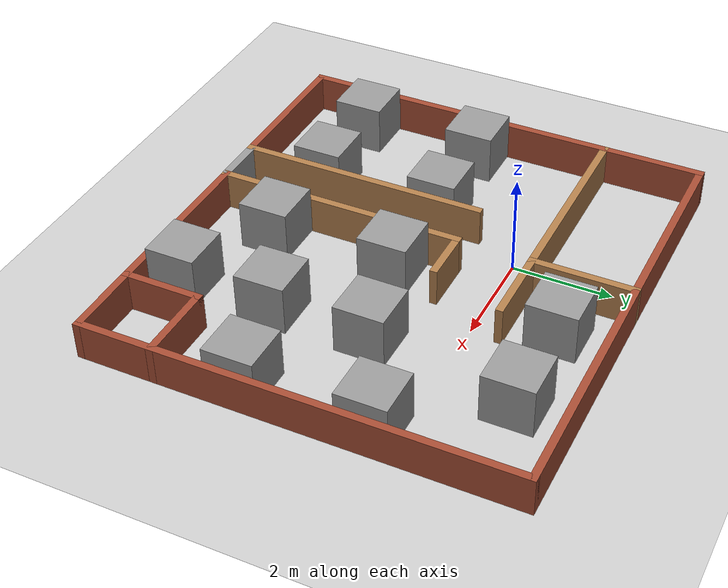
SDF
<sdf version="1.7">
 <world name="default">
  <model name="ground_plane">
   <static>1</static>
   <link name="link">
    <collision name="collision">
     <geometry><plane><normal>0 0 1</normal><size>100 100</size></plane></geometry>
     <surface><friction><ode><mu>100</mu><mu2>50</mu2></ode></friction></surface>
    </collision>
    <visual name="visual">
     <cast_shadows>0</cast_shadows>
     <geometry><plane><normal>0 0 1</normal><size>100 100</size></plane></geometry>
     <material>
      <script><uri>file://media/materials/scripts/gazebo.material</uri><name>Gazebo/Grey</name></script>
     </material>
    </visual>
   </link>
  </model>
  <light name="sun" type="directional">
   <pose>0 0 10 0 -0 0</pose>
   <diffuse>0.8 0.8 0.8 1</diffuse>
   <specular>0.2 0.2 0.2 1</specular>
   <attenuation>
    <range>1000</range>
    <constant>0.9</constant>
    <linear>0.01</linear>
    <quadratic>0.001</quadratic>
   </attenuation>
   <direction>-0.5 0.1 -0.9</direction>
   <spot><inner_angle>0</inner_angle><outer_angle>0</outer_angle><falloff>0</falloff></spot>
  </light>
  <scene><shadows>0</shadows><ambient>0.4 0.4 0.4 1</ambient><background>0.7 0.7 0.7 1</background></scene>
  <physics type="ode">
   <real_time_update_rate>1000</real_time_update_rate>
   <max_step_size>0.001</max_step_size>
   <real_time_factor>1</real_time_factor>
   <ode>
    <solver>
     <type>quick</type>
     <iters>150</iters>
     <precon_iters>0</precon_iters>
     <sor>1.4</sor>
     <use_dynamic_moi_rescaling>1</use_dynamic_moi_rescaling>
    </solver>
    <constraints>
     <cfm>1e-05</cfm>
     <erp>0.2</erp>
     <contact_max_correcting_vel>2000</contact_max_correcting_vel>
     <contact_surface_layer>0.01</contact_surface_layer>
    </constraints>
   </ode>
  </physics>
  <gravity>0 0 -9.8</gravity>
  <magnetic_field>6e-06 2.3e-05 -4.2e-05</magnetic_field>
  <atmosphere type="adiabatic"/>
  <spherical_coordinates>
   <surface_model>EARTH_WGS84</surface_model>
   <latitude_deg>0</latitude_deg>
   <longitude_deg>0</longitude_deg>
   <elevation>0</elevation>
   <heading_deg>0</heading_deg>
  </spherical_coordinates>
  <model name="unit_box">
   <pose>1.07501 -2 0.5 0 0 -9e-06</pose>
   <link name="link">
    <inertial>
     <mass>1</mass>
     <inertia>
      <ixx>0.166667</ixx>
      <ixy>0</ixy>
      <ixz>0</ixz>
      <iyy>0.166667</iyy>
      <iyz>0</iyz>
      <izz>0.166667</izz>
     </inertia>
    </inertial>
    <collision name="collision"><geometry><box><size>1 1 1</size></box></geometry></collision>
    <visual name="visual">
     <geometry><box><size>1 1 1</size></box></geometry>
     <material>
      <script><name>Gazebo/Grey</name><uri>file://media/materials/scripts/gazebo.material</uri></script>
     </material>
    </visual>
   </link>
  </model>
  <model name="unit_box_0">
   <pose>1.075 -4.5 0.5 0 0 -9e-06</pose>
   <link name="link">
    <inertial>
     <mass>1</mass>
     <inertia>
      <ixx>0.166667</ixx>
      <ixy>0</ixy>
      <ixz>0</ixz>
      <iyy>0.166667</iyy>
      <iyz>0</iyz>
      <izz>0.166667</izz>
     </inertia>
    </inertial>
    <collision name="collision"><geometry><box><size>1 1 1</size></box></geometry></collision>
    <visual name="visual">
     <geometry><box><size>1 1 1</size></box></geometry>
     <material>
      <script><name>Gazebo/Grey</name><uri>file://media/materials/scripts/gazebo.material</uri></script>
     </material>
    </visual>
   </link>
  </model>
  <model name="unit_box_1">
   <pose>1.5 1.5 0.5 0 -0 0</pose>
   <link name="link">
    <inertial>
     <mass>1</mass>
     <inertia>
      <ixx>0.166667</ixx>
      <ixy>0</ixy>
      <ixz>0</ixz>
      <iyy>0.166667</iyy>
      <iyz>0</iyz>
      <izz>0.166667</izz>
     </inertia>
    </inertial>
    <collision name="collision"><geometry><box><size>1 1 1</size></box></geometry></collision>
    <visual name="visual">
     <geometry><box><size>1 1 1</size></box></geometry>
     <material>
      <script><name>Gazebo/Grey</name><uri>file://media/materials/scripts/gazebo.material</uri></script>
     </material>
    </visual>
   </link>
  </model>
  <model name="unit_box_2">
   <pose>3.5 1.5 0.5 0 -0 0</pose>
   <link name="link">
    <inertial>
     <mass>1</mass>
     <inertia>
      <ixx>0.166667</ixx>
      <ixy>0</ixy>
      <ixz>0</ixz>
      <iyy>0.166667</iyy>
      <iyz>0</iyz>
      <izz>0.166667</izz>
     </inertia>
    </inertial>
    <collision name="collision"><geometry><box><size>1 1 1</size></box></geometry></collision>
    <visual name="visual">
     <geometry><box><size>1 1 1</size></box></geometry>
     <material>
      <script><name>Gazebo/Grey</name><uri>file://media/materials/scripts/gazebo.material</uri></script>
     </material>
    </visual>
   </link>
  </model>
  <model name="unit_box_3">
   <pose>2.99974 -1.49975 0.5 0 0 -0.005893</pose>
   <link name="link">
    <inertial>
     <mass>1</mass>
     <inertia>
      <ixx>0.166667</ixx>
      <ixy>0</ixy>
      <ixz>0</ixz>
      <iyy>0.166667</iyy>
      <iyz>0</iyz>
      <izz>0.166667</izz>
     </inertia>
    </inertial>
    <collision name="collision"><geometry><box><size>1 1 1</size></box></geometry></collision>
    <visual name="visual">
     <geometry><box><size>1 1 1</size></box></geometry>
     <material>
      <script><name>Gazebo/Grey</name><uri>file://media/materials/scripts/gazebo.material</uri></script>
     </material>
    </visual>
   </link>
  </model>
  <model name="unit_box_4">
   <pose>2.99225 -3.49587 0.5 0 -0 0.010614</pose>
   <link name="link">
    <inertial>
     <mass>1</mass>
     <inertia>
      <ixx>0.166667</ixx>
      <ixy>0</ixy>
      <ixz>0</ixz>
      <iyy>0.166667</iyy>
      <iyz>0</iyz>
      <izz>0.166667</izz>
     </inertia>
    </inertial>
    <collision name="collision"><geometry><box><size>1 1 1</size></box></geometry></collision>
    <visual name="visual">
     <geometry><box><size>1 1 1</size></box></geometry>
     <material>
      <script><name>Gazebo/Grey</name><uri>file://media/materials/scripts/gazebo.material</uri></script>
     </material>
    </visual>
   </link>
  </model>
  <model name="unit_box_5">
   <pose>2.99984 -5.34682 0.5 0 -0 1.2e-05</pose>
   <link name="link">
    <inertial>
     <mass>1</mass>
     <inertia>
      <ixx>0.166667</ixx>
      <ixy>0</ixy>
      <ixz>0</ixz>
      <iyy>0.166667</iyy>
      <iyz>0</iyz>
      <izz>0.166667</izz>
     </inertia>
    </inertial>
    <collision name="collision"><geometry><box><size>1 1 1</size></box></geometry></collision>
    <visual name="visual">
     <geometry><box><size>1 1 1</size></box></geometry>
     <material>
      <script><name>Gazebo/Grey</name><uri>file://media/materials/scripts/gazebo.material</uri></script>
     </material>
    </visual>
   </link>
  </model>
  <model name="unit_box_6">
   <pose>4.90508 -3 0.5 0 0 -9e-06</pose>
   <link name="link">
    <inertial>
     <mass>1</mass>
     <inertia>
      <ixx>0.166667</ixx>
      <ixy>0</ixy>
      <ixz>0</ixz>
      <iyy>0.166667</iyy>
      <iyz>0</iyz>
      <izz>0.166667</izz>
     </inertia>
    </inertial>
    <collision name="collision"><geometry><box><size>1 1 1</size></box></geometry></collision>
    <visual name="visual">
     <geometry><box><size>1 1 1</size></box></geometry>
     <material>
      <script><name>Gazebo/Grey</name><uri>file://media/materials/scripts/gazebo.material</uri></script>
     </material>
    </visual>
   </link>
  </model>
  <model name="unit_box_7">
   <pose>4.90509 -0.499996 0.5 0 0 -9e-06</pose>
   <link name="link">
    <inertial>
     <mass>1</mass>
     <inertia>
      <ixx>0.166667</ixx>
      <ixy>0</ixy>
      <ixz>0</ixz>
      <iyy>0.166667</iyy>
      <iyz>0</iyz>
      <izz>0.166667</izz>
     </inertia>
    </inertial>
    <collision name="collision"><geometry><box><size>1 1 1</size></box></geometry></collision>
    <visual name="visual">
     <geometry><box><size>1 1 1</size></box></geometry>
     <material>
      <script><name>Gazebo/Grey</name><uri>file://media/materials/scripts/gazebo.material</uri></script>
     </material>
    </visual>
   </link>
  </model>
  <model name="unit_box_8">
   <pose>-1.09492 -2 0.5 0 -0 9e-06</pose>
   <link name="link">
    <inertial>
     <mass>1</mass>
     <inertia>
      <ixx>0.166667</ixx>
      <ixy>0</ixy>
      <ixz>0</ixz>
      <iyy>0.166667</iyy>
      <iyz>0</iyz>
      <izz>0.166667</izz>
     </inertia>
    </inertial>
    <collision name="collision"><geometry><box><size>1 1 1</size></box></geometry></collision>
    <visual name="visual">
     <geometry><box><size>1 1 1</size></box></geometry>
     <material>
      <script><name>Gazebo/Grey</name><uri>file://media/materials/scripts/gazebo.material</uri></script>
     </material>
    </visual>
   </link>
  </model>
  <model name="unit_box_9">
   <pose>-2.925 -2 0.5 0 0 -9e-06</pose>
   <link name="link">
    <inertial>
     <mass>1</mass>
     <inertia>
      <ixx>0.166667</ixx>
      <ixy>0</ixy>
      <ixz>0</ixz>
      <iyy>0.166667</iyy>
      <iyz>0</iyz>
      <izz>0.166667</izz>
     </inertia>
    </inertial>
    <collision name="collision"><geometry><box><size>1 1 1</size></box></geometry></collision>
    <visual name="visual">
     <geometry><box><size>1 1 1</size></box></geometry>
     <material>
      <script><name>Gazebo/Grey</name><uri>file://media/materials/scripts/gazebo.material</uri></script>
     </material>
    </visual>
   </link>
  </model>
  <model name="unit_box_10">
   <pose>-1.09491 -4.5 0.5 0 -0 0</pose>
   <link name="link">
    <inertial>
     <mass>1</mass>
     <inertia>
      <ixx>0.166667</ixx>
      <ixy>0</ixy>
      <ixz>0</ixz>
      <iyy>0.166667</iyy>
      <iyz>0</iyz>
      <izz>0.166667</izz>
     </inertia>
    </inertial>
    <collision name="collision"><geometry><box><size>1 1 1</size></box></geometry></collision>
    <visual name="visual">
     <geometry><box><size>1 1 1</size></box></geometry>
     <material>
      <script><name>Gazebo/Grey</name><uri>file://media/materials/scripts/gazebo.material</uri></script>
     </material>
    </visual>
   </link>
  </model>
  <model name="unit_box_11">
   <pose>-2.92501 -4.5 0.5 0 0 -9e-06</pose>
   <link name="link">
    <inertial>
     <mass>1</mass>
     <inertia>
      <ixx>0.166667</ixx>
      <ixy>0</ixy>
      <ixz>0</ixz>
      <iyy>0.166667</iyy>
      <iyz>0</iyz>
      <izz>0.166667</izz>
     </inertia>
    </inertial>
    <collision name="collision"><geometry><box><size>1 1 1</size></box></geometry></collision>
    <visual name="visual">
     <geometry><box><size>1 1 1</size></box></geometry>
     <material>
      <script><name>Gazebo/Grey</name><uri>file://media/materials/scripts/gazebo.material</uri></script>
     </material>
    </visual>
   </link>
  </model>
  <model name="restaurant.world">
   <pose>0.99786 -1.69289 0 0 -0 0</pose>
   <link name="Door_0">
    <collision name="Door_0_Collision">
     <geometry><box><size>1 0.17 1</size></box></geometry>
     <pose>0 0 0.25 0 -0 0</pose>
    </collision>
    <visual name="Door_0_Visual">
     <pose>0 0 0.25 0 -0 0</pose>
     <geometry><box><size>1 0.17 1</size></box></geometry>
     <material>
      <script><uri>file://media/materials/scripts/gazebo.material</uri><name>Gazebo/Grey</name></script>
     </material>
    </visual>
    <pose>-0.989952 -4.24779 0 0 -0 0</pose>
   </link>
   <link name="Wall_12">
    <collision name="Wall_12_Collision">
     <geometry><box><size>8.65 0.15 1</size></box></geometry>
     <pose>0 0 0.25 0 -0 0</pose>
    </collision>
    <visual name="Wall_12_Visual">
     <pose>0 0 0.25 0 -0 0</pose>
     <geometry><box><size>8.65 0.15 1</size></box></geometry>
     <material>
      <script><uri>file://media/materials/scripts/gazebo.material</uri><name>Gazebo/Bricks</name></script>
      <ambient>1 1 1 1</ambient>
     </material>
     <meta><layer>0</layer></meta>
    </visual>
    <pose>-4.5 0 0 0 -0 -1.5708</pose>
   </link>
   <link name="Wall_14">
    <collision name="Wall_14_Collision">
     <geometry><box><size>9.15 0.15 1</size></box></geometry>
     <pose>0 0 0.25 0 -0 0</pose>
    </collision>
    <visual name="Wall_14_Visual">
     <pose>0 0 0.25 0 -0 0</pose>
     <geometry><box><size>9.15 0.15 1</size></box></geometry>
     <material>
      <script><uri>file://media/materials/scripts/gazebo.material</uri><name>Gazebo/Bricks</name></script>
      <ambient>1 1 1 1</ambient>
     </material>
     <meta><layer>0</layer></meta>
    </visual>
    <pose>-0 4.25 0 0 -0 0</pose>
   </link>
   <link name="Wall_16">
    <collision name="Wall_16_Collision">
     <geometry><box><size>8.65 0.15 1</size></box></geometry>
     <pose>0 0 0.25 0 -0 0</pose>
    </collision>
    <visual name="Wall_16_Visual">
     <pose>0 0 0.25 0 -0 0</pose>
     <geometry><box><size>8.65 0.15 1</size></box></geometry>
     <material>
      <script><uri>file://media/materials/scripts/gazebo.material</uri><name>Gazebo/Bricks</name></script>
      <ambient>1 1 1 1</ambient>
     </material>
     <meta><layer>0</layer></meta>
    </visual>
    <pose>4.5 0 0 0 -0 -1.5708</pose>
   </link>
   <link name="Wall_18">
    <collision name="Wall_18_Collision">
     <geometry><box><size>5.15 0.15 1</size></box></geometry>
     <pose>0 0 0.25 0 -0 0</pose>
    </collision>
    <visual name="Wall_18_Visual">
     <pose>0 0 0.25 0 -0 0</pose>
     <geometry><box><size>5.15 0.15 1</size></box></geometry>
     <material>
      <script><uri>file://media/materials/scripts/gazebo.material</uri><name>Gazebo/Bricks</name></script>
      <ambient>1 1 1 1</ambient>
     </material>
     <meta><layer>0</layer></meta>
    </visual>
    <pose>2 -4.25 0 0 -0 3.14159</pose>
   </link>
   <link name="Wall_20">
    <collision name="Wall_20_Collision">
     <geometry><box><size>3.15 0.15 1</size></box></geometry>
     <pose>0 0 0.25 0 -0 0</pose>
    </collision>
    <visual name="Wall_20_Visual">
     <pose>0 0 0.25 0 -0 0</pose>
     <geometry><box><size>3.15 0.15 1</size></box></geometry>
     <material>
      <script><uri>file://media/materials/scripts/gazebo.material</uri><name>Gazebo/Bricks</name></script>
      <ambient>1 1 1 1</ambient>
     </material>
     <meta><layer>0</layer></meta>
    </visual>
    <pose>-3 -4.25 0 0 -0 0</pose>
   </link>
   <link name="Wall_22">
    <collision name="Wall_22_Collision">
     <geometry><box><size>5.15 0.15 1</size></box></geometry>
     <pose>0 0 0.25 0 -0 0</pose>
    </collision>
    <visual name="Wall_22_Visual">
     <pose>0 0 0.25 0 -0 0</pose>
     <geometry><box><size>5.15 0.15 1</size></box></geometry>
     <material>
      <script><uri>file://media/materials/scripts/gazebo.material</uri><name>Gazebo/Wood</name></script>
      <ambient>1 1 1 1</ambient>
     </material>
     <meta><layer>0</layer></meta>
    </visual>
    <pose>-1.5 -1.75 0 0 -0 1.5708</pose>
   </link>
   <link name="Wall_24">
    <collision name="Wall_24_Collision">
     <geometry><box><size>5.15 0.15 1</size></box></geometry>
     <pose>0 0 0.25 0 -0 0</pose>
    </collision>
    <visual name="Wall_24_Visual">
     <pose>0 0 0.25 0 -0 0</pose>
     <geometry><box><size>5.15 0.15 1</size></box></geometry>
     <material>
      <script><uri>file://media/materials/scripts/gazebo.material</uri><name>Gazebo/Wood</name></script>
      <ambient>1 1 1 1</ambient>
     </material>
     <meta><layer>0</layer></meta>
    </visual>
    <pose>-0.5 -1.75 0 0 -0 -1.5708</pose>
   </link>
   <link name="Wall_26">
    <collision name="Wall_26_Collision">
     <geometry><box><size>5.65 0.15 1</size></box></geometry>
     <pose>0 0 0.25 0 -0 0</pose>
    </collision>
    <visual name="Wall_26_Visual">
     <pose>0 0 0.25 0 -0 0</pose>
     <geometry><box><size>5.65 0.15 1</size></box></geometry>
     <material>
      <script><uri>file://media/materials/scripts/gazebo.material</uri><name>Gazebo/Wood</name></script>
      <ambient>1 1 1 1</ambient>
     </material>
     <meta><layer>0</layer></meta>
    </visual>
    <pose>-1.75 2.25 0 0 -0 0</pose>
   </link>
   <link name="Wall_28">
    <collision name="Wall_28_Collision">
     <geometry><box><size>2.15 0.15 1</size></box></geometry>
     <pose>0 0 0.25 0 -0 0</pose>
    </collision>
    <visual name="Wall_28_Visual">
     <pose>0 0 0.25 0 -0 0</pose>
     <geometry><box><size>2.15 0.15 1</size></box></geometry>
     <material>
      <script><uri>file://media/materials/scripts/gazebo.material</uri><name>Gazebo/Wood</name></script>
      <ambient>1 1 1 1</ambient>
     </material>
     <meta><layer>0</layer></meta>
    </visual>
    <pose>-0.5 3.25 0 0 -0 -1.5708</pose>
   </link>
   <link name="Wall_30">
    <collision name="Wall_30_Collision">
     <geometry><box><size>1.15 0.15 1</size></box></geometry>
     <pose>0 0 0.25 0 -0 0</pose>
    </collision>
    <visual name="Wall_30_Visual">
     <pose>0 0 0.25 0 -0 0</pose>
     <geometry><box><size>1.15 0.15 1</size></box></geometry>
     <material>
      <script><uri>file://media/materials/scripts/gazebo.material</uri><name>Gazebo/Wood</name></script>
      <ambient>1 1 1 1</ambient>
     </material>
     <meta><layer>0</layer></meta>
    </visual>
    <pose>-0 0.75 0 0 -0 0</pose>
   </link>
   <link name="Wall_32">
    <collision name="Wall_32_Collision">
     <geometry><box><size>1.65 0.15 1</size></box></geometry>
     <pose>0 0 0.25 0 -0 0</pose>
    </collision>
    <visual name="Wall_32_Visual">
     <pose>0 0 0.25 0 -0 0</pose>
     <geometry><box><size>1.65 0.15 1</size></box></geometry>
     <material>
      <script><uri>file://media/materials/scripts/gazebo.material</uri><name>Gazebo/Bricks</name></script>
      <ambient>1 1 1 1</ambient>
     </material>
     <meta><layer>0</layer></meta>
    </visual>
    <pose>3 -3.5 0 0 -0 1.5708</pose>
   </link>
   <link name="Wall_33">
    <collision name="Wall_33_Collision">
     <geometry><box><size>1.65 0.15 1</size></box></geometry>
     <pose>0 0 0.25 0 -0 0</pose>
    </collision>
    <visual name="Wall_33_Visual">
     <pose>0 0 0.25 0 -0 0</pose>
     <geometry><box><size>1.65 0.15 1</size></box></geometry>
     <material>
      <script><uri>file://media/materials/scripts/gazebo.material</uri><name>Gazebo/Bricks</name></script>
      <ambient>1 1 1 1</ambient>
     </material>
     <meta><layer>0</layer></meta>
    </visual>
    <pose>3.75 -2.75 0 0 -0 0</pose>
   </link>
   <static>1</static>
  </model>
 </world>
</sdf>
